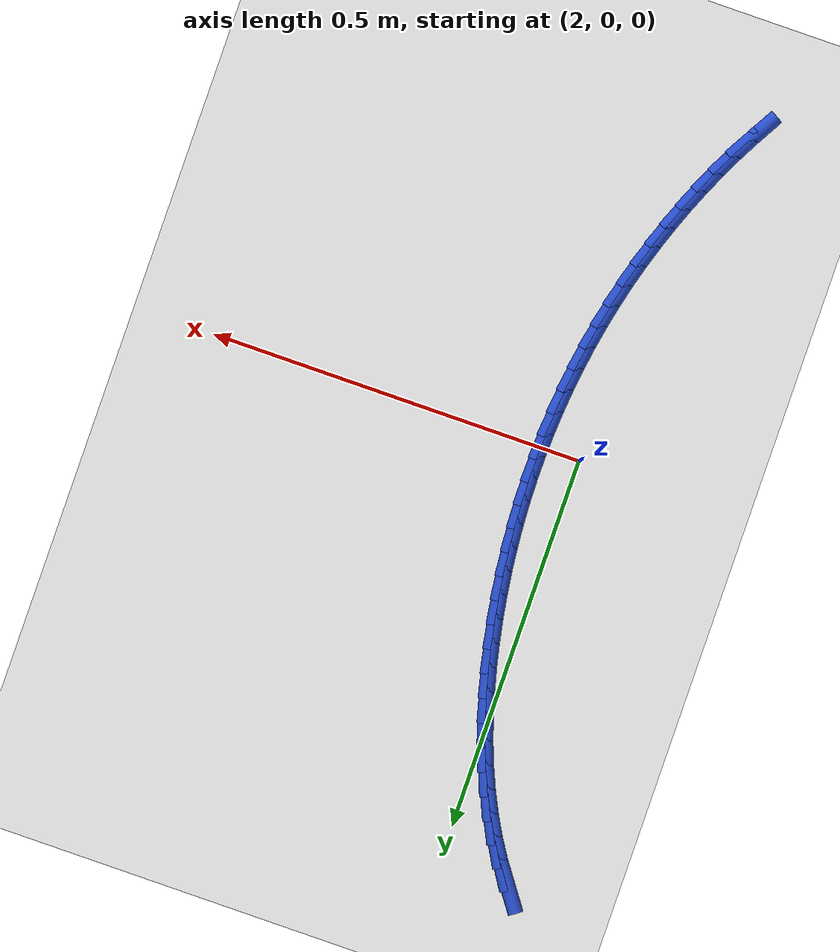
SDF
<sdf version="1.6">
 <world name="default">
  <model name="ground_plane">
   <static>1</static>
   <link name="link">
    <collision name="collision">
     <geometry><plane><normal>0 0 1</normal><size>100 100</size></plane></geometry>
     <surface><friction><ode><mu>100</mu><mu2>50</mu2></ode></friction></surface>
    </collision>
    <visual name="visual">
     <cast_shadows>0</cast_shadows>
     <geometry><plane><normal>0 0 1</normal><size>100 100</size></plane></geometry>
     <material>
      <script><uri>file://media/materials/scripts/gazebo.material</uri><name>Gazebo/WhiteGlow</name></script>
     </material>
    </visual>
   </link>
  </model>
  <model name="line">
   <link name="link_88">
    <pose>1.9089775642422677 0.5461763578117578 0.01 0 1.57 -0.9491147296151927</pose>
    <collision name="collision">
     <geometry><cylinder><radius>0.01</radius><length>0.08</length></cylinder></geometry>
    </collision>
    <visual name="visual">
     <material>
      <script><name>Gazebo/Blue</name><uri>file://media/materials/scripts/gazebo.material</uri></script>
     </material>
     <geometry><cylinder><radius>0.01</radius><length>0.08</length></cylinder></geometry>
    </visual>
   </link>
   <link name="link_89">
    <pose>1.9268253142343728 0.5212650139772419 0.01 0 1.57 -1.0091416666556263</pose>
    <collision name="collision">
     <geometry><cylinder><radius>0.01</radius><length>0.08</length></cylinder></geometry>
    </collision>
    <visual name="visual">
     <material>
      <script><name>Gazebo/Blue</name><uri>file://media/materials/scripts/gazebo.material</uri></script>
     </material>
     <geometry><cylinder><radius>0.01</radius><length>0.08</length></cylinder></geometry>
    </visual>
   </link>
   <link name="link_90">
    <pose>1.9432118773200204 0.4952238836038323 0.01 0 1.57 -1.065036971241502</pose>
    <collision name="collision">
     <geometry><cylinder><radius>0.01</radius><length>0.08</length></cylinder></geometry>
    </collision>
    <visual name="visual">
     <material>
      <script><name>Gazebo/Blue</name><uri>file://media/materials/scripts/gazebo.material</uri></script>
     </material>
     <geometry><cylinder><radius>0.01</radius><length>0.08</length></cylinder></geometry>
    </visual>
   </link>
   <link name="link_91">
    <pose>1.9581984139895385 0.46816281851552105 0.01 0 1.57 -1.1168120620067408</pose>
    <collision name="collision">
     <geometry><cylinder><radius>0.01</radius><length>0.08</length></cylinder></geometry>
    </collision>
    <visual name="visual">
     <material>
      <script><name>Gazebo/Blue</name><uri>file://media/materials/scripts/gazebo.material</uri></script>
     </material>
     <geometry><cylinder><radius>0.01</radius><length>0.08</length></cylinder></geometry>
    </visual>
   </link>
   <link name="link_92">
    <pose>1.971847166770858 0.4401928322139081 0.01 0 1.57 -1.1646097633688304</pose>
    <collision name="collision">
     <geometry><cylinder><radius>0.01</radius><length>0.08</length></cylinder></geometry>
    </collision>
    <visual name="visual">
     <material>
      <script><name>Gazebo/Blue</name><uri>file://media/materials/scripts/gazebo.material</uri></script>
     </material>
     <geometry><cylinder><radius>0.01</radius><length>0.08</length></cylinder></geometry>
    </visual>
   </link>
   <link name="link_93">
    <pose>1.98422037819191 0.4114249382005948 0.01 0 1.57 -1.208625912299175</pose>
    <collision name="collision">
     <geometry><cylinder><radius>0.01</radius><length>0.08</length></cylinder></geometry>
    </collision>
    <visual name="visual">
     <material>
      <script><name>Gazebo/Blue</name><uri>file://media/materials/scripts/gazebo.material</uri></script>
     </material>
     <geometry><cylinder><radius>0.01</radius><length>0.08</length></cylinder></geometry>
    </visual>
   </link>
   <link name="link_94">
    <pose>1.9953802907806253 0.38197014997718104 0.01 0 1.57 -1.2490867318750942</pose>
    <collision name="collision">
     <geometry><cylinder><radius>0.01</radius><length>0.08</length></cylinder></geometry>
    </collision>
    <visual name="visual">
     <material>
      <script><name>Gazebo/Blue</name><uri>file://media/materials/scripts/gazebo.material</uri></script>
     </material>
     <geometry><cylinder><radius>0.01</radius><length>0.08</length></cylinder></geometry>
    </visual>
   </link>
   <link name="link_95">
    <pose>2.005389147064935 0.3519394810452667 0.01 0 1.57 -1.2862314237658226</pose>
    <collision name="collision">
     <geometry><cylinder><radius>0.01</radius><length>0.08</length></cylinder></geometry>
    </collision>
    <visual name="visual">
     <material>
      <script><name>Gazebo/Blue</name><uri>file://media/materials/scripts/gazebo.material</uri></script>
     </material>
     <geometry><cylinder><radius>0.01</radius><length>0.08</length></cylinder></geometry>
    </visual>
   </link>
   <link name="link_96">
    <pose>2.0143091895727707 0.32144394490645306 0.01 0 1.57 -1.3202994813837805</pose>
    <collision name="collision">
     <geometry><cylinder><radius>0.01</radius><length>0.08</length></cylinder></geometry>
    </collision>
    <visual name="visual">
     <material>
      <script><name>Gazebo/Blue</name><uri>file://media/materials/scripts/gazebo.material</uri></script>
     </material>
     <geometry><cylinder><radius>0.01</radius><length>0.08</length></cylinder></geometry>
    </visual>
   </link>
   <link name="link_97">
    <pose>2.0222026608320633 0.2905945550623401 0.01 0 1.57 -1.3515218998815273</pose>
    <collision name="collision">
     <geometry><cylinder><radius>0.01</radius><length>0.08</length></cylinder></geometry>
    </collision>
    <visual name="visual">
     <material>
      <script><name>Gazebo/Blue</name><uri>file://media/materials/scripts/gazebo.material</uri></script>
     </material>
     <geometry><cylinder><radius>0.01</radius><length>0.08</length></cylinder></geometry>
    </visual>
   </link>
   <link name="link_98">
    <pose>2.029131803370743 0.25950232501452786 0.01 0 1.57 -1.3802130893798659</pose>
    <collision name="collision">
     <geometry><cylinder><radius>0.01</radius><length>0.08</length></cylinder></geometry>
    </collision>
    <visual name="visual">
     <material>
      <script><name>Gazebo/Blue</name><uri>file://media/materials/scripts/gazebo.material</uri></script>
     </material>
     <geometry><cylinder><radius>0.01</radius><length>0.08</length></cylinder></geometry>
    </visual>
   </link>
   <link name="link_99">
    <pose>2.0351563592875737 0.2282748282394207 0.01 0 1.57 -1.4079384231233527</pose>
    <collision name="collision">
     <geometry><cylinder><radius>0.01</radius><length>0.08</length></cylinder></geometry>
    </collision>
    <visual name="visual">
     <material>
      <script><name>Gazebo/Blue</name><uri>file://media/materials/scripts/gazebo.material</uri></script>
     </material>
     <geometry><cylinder><radius>0.01</radius><length>0.08</length></cylinder></geometry>
    </visual>
   </link>
   <link name="link_100">
    <pose>2.0403001241544647 0.19697018391986434 0.01 0 1.57 -1.4357893926437775</pose>
    <collision name="collision">
     <geometry><cylinder><radius>0.01</radius><length>0.08</length></cylinder></geometry>
    </collision>
    <visual name="visual">
     <material>
      <script><name>Gazebo/Blue</name><uri>file://media/materials/scripts/gazebo.material</uri></script>
     </material>
     <geometry><cylinder><radius>0.01</radius><length>0.08</length></cylinder></geometry>
    </visual>
   </link>
   <link name="link_101">
    <pose>2.0445599535948875 0.1656094479606866 0.01 0 1.57 -1.4638034324423772</pose>
    <collision name="collision">
     <geometry><cylinder><radius>0.01</radius><length>0.08</length></cylinder></geometry>
    </collision>
    <visual name="visual">
     <material>
      <script><name>Gazebo/Blue</name><uri>file://media/materials/scripts/gazebo.material</uri></script>
     </material>
     <geometry><cylinder><radius>0.01</radius><length>0.08</length></cylinder></geometry>
    </visual>
   </link>
   <link name="link_102">
    <pose>2.0479320512233445 0.13421277924979144 0.01 0 1.57 -1.4919921257262423</pose>
    <collision name="collision">
     <geometry><cylinder><radius>0.01</radius><length>0.08</length></cylinder></geometry>
    </collision>
    <visual name="visual">
     <material>
      <script><name>Gazebo/Blue</name><uri>file://media/materials/scripts/gazebo.material</uri></script>
     </material>
     <geometry><cylinder><radius>0.01</radius><length>0.08</length></cylinder></geometry>
    </visual>
   </link>
   <link name="link_103">
    <pose>2.050412620654335 0.10280033667508139 0.01 0 1.57 -1.5203665676957185</pose>
    <collision name="collision">
     <geometry><cylinder><radius>0.01</radius><length>0.08</length></cylinder></geometry>
    </collision>
    <visual name="visual">
     <material>
      <script><name>Gazebo/Blue</name><uri>file://media/materials/scripts/gazebo.material</uri></script>
     </material>
     <geometry><cylinder><radius>0.01</radius><length>0.08</length></cylinder></geometry>
    </visual>
   </link>
   <link name="link_104">
    <pose>2.051997865502363 0.07139227912445975 0.01 0 1.57 -1.5489372512645831</pose>
    <collision name="collision">
     <geometry><cylinder><radius>0.01</radius><length>0.08</length></cylinder></geometry>
    </collision>
    <visual name="visual">
     <material>
      <script><name>Gazebo/Blue</name><uri>file://media/materials/scripts/gazebo.material</uri></script>
     </material>
     <geometry><cylinder><radius>0.01</radius><length>0.08</length></cylinder></geometry>
    </visual>
   </link>
   <link name="link_105">
    <pose>2.0526839893819284 0.040008765485829614 0.01 0 1.57 1.5638787057852532</pose>
    <collision name="collision">
     <geometry><cylinder><radius>0.01</radius><length>0.08</length></cylinder></geometry>
    </collision>
    <visual name="visual">
     <material>
      <script><name>Gazebo/Blue</name><uri>file://media/materials/scripts/gazebo.material</uri></script>
     </material>
     <geometry><cylinder><radius>0.01</radius><length>0.08</length></cylinder></geometry>
    </visual>
   </link>
   <link name="link_106">
    <pose>2.0524671959075347 0.008669954647093366 0.01 0 1.57 1.534887070322707</pose>
    <collision name="collision">
     <geometry><cylinder><radius>0.01</radius><length>0.08</length></cylinder></geometry>
    </collision>
    <visual name="visual">
     <material>
      <script><name>Gazebo/Blue</name><uri>file://media/materials/scripts/gazebo.material</uri></script>
     </material>
     <geometry><cylinder><radius>0.01</radius><length>0.08</length></cylinder></geometry>
    </visual>
   </link>
   <link name="link_107">
    <pose>2.051343688693681 -0.022603994503844396 0.01 0 1.57 1.5056725433539104</pose>
    <collision name="collision">
     <geometry><cylinder><radius>0.01</radius><length>0.08</length></cylinder></geometry>
    </collision>
    <visual name="visual">
     <material>
      <script><name>Gazebo/Blue</name><uri>file://media/materials/scripts/gazebo.material</uri></script>
     </material>
     <geometry><cylinder><radius>0.01</radius><length>0.08</length></cylinder></geometry>
    </visual>
   </link>
   <link name="link_108">
    <pose>2.0493096713548704 -0.05379292307908128 0.01 0 1.57 1.4762282768896664</pose>
    <collision name="collision">
     <geometry><cylinder><radius>0.01</radius><length>0.08</length></cylinder></geometry>
    </collision>
    <visual name="visual">
     <material>
      <script><name>Gazebo/Blue</name><uri>file://media/materials/scripts/gazebo.material</uri></script>
     </material>
     <geometry><cylinder><radius>0.01</radius><length>0.08</length></cylinder></geometry>
    </visual>
   </link>
   <link name="link_109">
    <pose>2.0463613475056044 -0.08487667219071415 0.01 0 1.57 1.446548660995308</pose>
    <collision name="collision">
     <geometry><cylinder><radius>0.01</radius><length>0.08</length></cylinder></geometry>
    </collision>
    <visual name="visual">
     <material>
      <script><name>Gazebo/Blue</name><uri>file://media/materials/scripts/gazebo.material</uri></script>
     </material>
     <geometry><cylinder><radius>0.01</radius><length>0.08</length></cylinder></geometry>
    </visual>
   </link>
   <link name="link_110">
    <pose>2.0424949207603853 -0.11583508295083988 0.01 0 1.57 1.416629458153929</pose>
    <collision name="collision">
     <geometry><cylinder><radius>0.01</radius><length>0.08</length></cylinder></geometry>
    </collision>
    <visual name="visual">
     <material>
      <script><name>Gazebo/Blue</name><uri>file://media/materials/scripts/gazebo.material</uri></script>
     </material>
     <geometry><cylinder><radius>0.01</radius><length>0.08</length></cylinder></geometry>
    </visual>
   </link>
   <link name="link_111">
    <pose>2.0377065947337125 -0.1466479964715554 0.01 0 1.57 1.3864679369078037</pose>
    <collision name="collision">
     <geometry><cylinder><radius>0.01</radius><length>0.08</length></cylinder></geometry>
    </collision>
    <visual name="visual">
     <material>
      <script><name>Gazebo/Blue</name><uri>file://media/materials/scripts/gazebo.material</uri></script>
     </material>
     <geometry><cylinder><radius>0.01</radius><length>0.08</length></cylinder></geometry>
    </visual>
   </link>
   <link name="link_112">
    <pose>2.03199257304009 -0.1772952538649582 0.01 0 1.57 1.3560630028453837</pose>
    <collision name="collision">
     <geometry><cylinder><radius>0.01</radius><length>0.08</length></cylinder></geometry>
    </collision>
    <visual name="visual">
     <material>
      <script><name>Gazebo/Blue</name><uri>file://media/materials/scripts/gazebo.material</uri></script>
     </material>
     <geometry><cylinder><radius>0.01</radius><length>0.08</length></cylinder></geometry>
    </visual>
   </link>
   <link name="link_113">
    <pose>2.0253490592940175 -0.2077566962431438 0.01 0 1.57 1.3254201032677722</pose>
    <collision name="collision">
     <geometry><cylinder><radius>0.01</radius><length>0.08</length></cylinder></geometry>
    </collision>
    <visual name="visual">
     <material>
      <script><name>Gazebo/Blue</name><uri>file://media/materials/scripts/gazebo.material</uri></script>
     </material>
     <geometry><cylinder><radius>0.01</radius><length>0.08</length></cylinder></geometry>
    </visual>
   </link>
   <link name="link_114">
    <pose>2.0177724590963626 -0.2380119716772166 0.01 0 1.57 1.294676527724378</pose>
    <collision name="collision">
     <geometry><cylinder><radius>0.01</radius><length>0.08</length></cylinder></geometry>
    </collision>
    <visual name="visual">
     <material>
      <script><name>Gazebo/Blue</name><uri>file://media/materials/scripts/gazebo.material</uri></script>
     </material>
     <geometry><cylinder><radius>0.01</radius><length>0.08</length></cylinder></geometry>
    </visual>
   </link>
   <link name="link_115">
    <pose>2.0092652044409953 -0.2680349687361873 0.01 0 1.57 1.263961232594705</pose>
    <collision name="collision">
     <geometry><cylinder><radius>0.01</radius><length>0.08</length></cylinder></geometry>
    </collision>
    <visual name="visual">
     <material>
      <script><name>Gazebo/Blue</name><uri>file://media/materials/scripts/gazebo.material</uri></script>
     </material>
     <geometry><cylinder><radius>0.01</radius><length>0.08</length></cylinder></geometry>
    </visual>
   </link>
   <link name="link_116">
    <pose>1.9998366380936732 -0.2977929712745855 0.01 0 1.57 1.233239367675492</pose>
    <collision name="collision">
     <geometry><cylinder><radius>0.01</radius><length>0.08</length></cylinder></geometry>
    </collision>
    <visual name="visual">
     <material>
      <script><name>Gazebo/Blue</name><uri>file://media/materials/scripts/gazebo.material</uri></script>
     </material>
     <geometry><cylinder><radius>0.01</radius><length>0.08</length></cylinder></geometry>
    </visual>
   </link>
   <link name="link_117">
    <pose>1.989496482722602 -0.32725290006923474 0.01 0 1.57 1.2024672358062658</pose>
    <collision name="collision">
     <geometry><cylinder><radius>0.01</radius><length>0.08</length></cylinder></geometry>
    </collision>
    <visual name="visual">
     <material>
      <script><name>Gazebo/Blue</name><uri>file://media/materials/scripts/gazebo.material</uri></script>
     </material>
     <geometry><cylinder><radius>0.01</radius><length>0.08</length></cylinder></geometry>
    </visual>
   </link>
   <link name="link_118">
    <pose>1.978254460995987 -0.3563816758969586 0.01 0 1.57 1.171601423184723</pose>
    <collision name="collision">
     <geometry><cylinder><radius>0.01</radius><length>0.08</length></cylinder></geometry>
    </collision>
    <visual name="visual">
     <material>
      <script><name>Gazebo/Blue</name><uri>file://media/materials/scripts/gazebo.material</uri></script>
     </material>
     <geometry><cylinder><radius>0.01</radius><length>0.08</length></cylinder></geometry>
    </visual>
   </link>
   <link name="link_119">
    <pose>1.9661202955820347 -0.3851462195345816 0.01 0 1.57 1.140598948628421</pose>
    <collision name="collision">
     <geometry><cylinder><radius>0.01</radius><length>0.08</length></cylinder></geometry>
    </collision>
    <visual name="visual">
     <material>
      <script><name>Gazebo/Blue</name><uri>file://media/materials/scripts/gazebo.material</uri></script>
     </material>
     <geometry><cylinder><radius>0.01</radius><length>0.08</length></cylinder></geometry>
    </visual>
   </link>
   <link name="link_120">
    <pose>1.9531037091489503 -0.41351345175892595 0.01 0 1.57 1.1094174250029998</pose>
    <collision name="collision">
     <geometry><cylinder><radius>0.01</radius><length>0.08</length></cylinder></geometry>
    </collision>
    <visual name="visual">
     <material>
      <script><name>Gazebo/Blue</name><uri>file://media/materials/scripts/gazebo.material</uri></script>
     </material>
     <geometry><cylinder><radius>0.01</radius><length>0.08</length></cylinder></geometry>
    </visual>
   </link>
   <link name="link_121">
    <pose>1.9392144243649398 -0.4414502933468159 0.01 0 1.57 1.078017545096699</pose>
    <collision name="collision">
     <geometry><cylinder><radius>0.01</radius><length>0.08</length></cylinder></geometry>
    </collision>
    <visual name="visual">
     <material>
      <script><name>Gazebo/Blue</name><uri>file://media/materials/scripts/gazebo.material</uri></script>
     </material>
     <geometry><cylinder><radius>0.01</radius><length>0.08</length></cylinder></geometry>
    </visual>
   </link>
   <link name="link_122">
    <pose>1.92446221809056 -0.4689237162251548 0.01 0 1.57 1.0471076354769235</pose>
    <collision name="collision">
     <geometry><cylinder><radius>0.01</radius><length>0.08</length></cylinder></geometry>
    </collision>
    <visual name="visual">
     <material>
      <script><name>Gazebo/Blue</name><uri>file://media/materials/scripts/gazebo.material</uri></script>
     </material>
     <geometry><cylinder><radius>0.01</radius><length>0.08</length></cylinder></geometry>
    </visual>
   </link>
  </model>
 </world>
</sdf>
